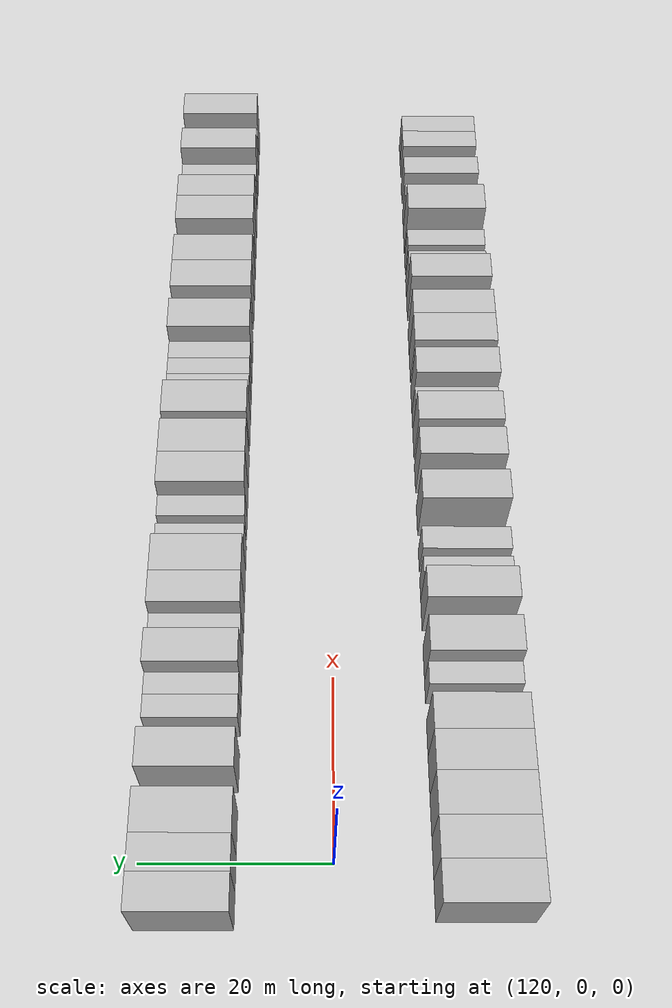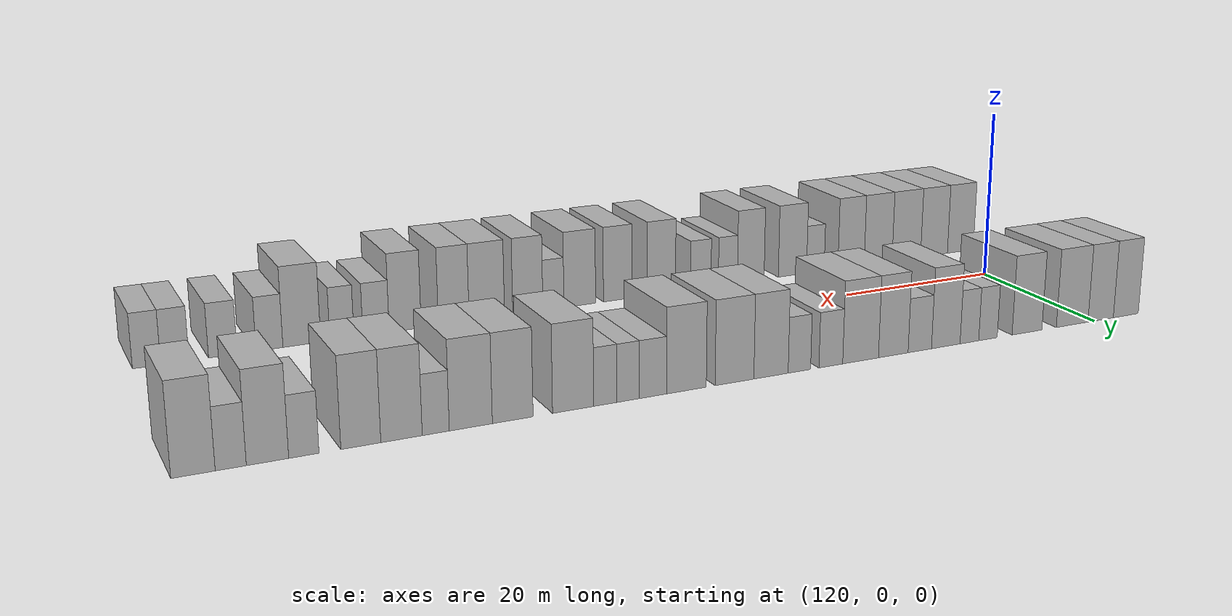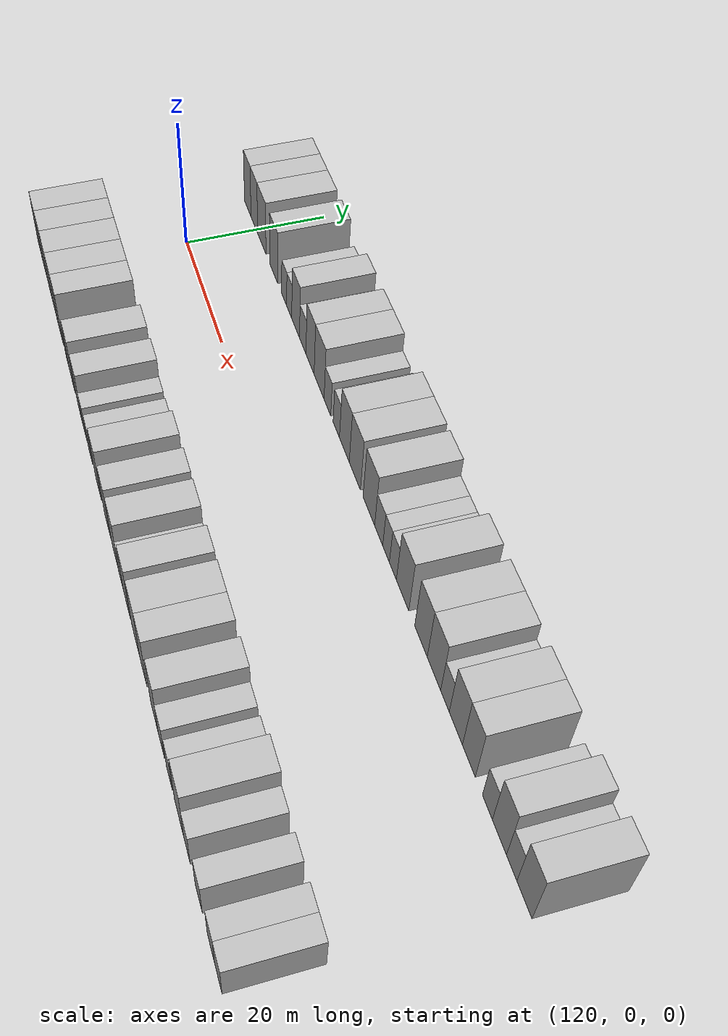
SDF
<sdf version="1.6">
 <world name="default">
  <model name="building_27">
   <static>1</static>
   <pose>115.3962 15.0000 0 0.000000 0.000000 1.570796</pose>
   <link name="link">
    <pose>0 0 4.50 0 0 0</pose>
    <collision name="collision"><geometry><box><size>10.0000 3.6218 9.0000</size></box></geometry></collision>
    <visual name="visual">
     <cast_shadows>0</cast_shadows>
     <geometry><box><size>10.0000 3.6218 9.0000</size></box></geometry>
     <material>
      <script>
       <uri>model://HANNAS_wall/materials/scripts</uri>
       <uri>model://HANNAS_wall/materials/textures</uri>
       <name>vrc/HANNAS_wall</name>
      </script>
     </material>
    </visual>
   </link>
  </model>
  <model name="building_28">
   <static>1</static>
   <pose>119.0243 15.0000 0 0.000000 0.000000 1.570796</pose>
   <link name="link">
    <pose>0 0 4.50 0 0 0</pose>
    <collision name="collision"><geometry><box><size>10.0000 3.6346 9.0000</size></box></geometry></collision>
    <visual name="visual">
     <cast_shadows>0</cast_shadows>
     <geometry><box><size>10.0000 3.6346 9.0000</size></box></geometry>
     <material>
      <script>
       <uri>model://HANNAS_wall/materials/scripts</uri>
       <uri>model://HANNAS_wall/materials/textures</uri>
       <name>vrc/HANNAS_wall</name>
      </script>
     </material>
    </visual>
   </link>
  </model>
  <model name="building_29">
   <static>1</static>
   <pose>123.0679 15.0000 0 0.000000 0.000000 1.570796</pose>
   <link name="link">
    <pose>0 0 4.50 0 0 0</pose>
    <collision name="collision"><geometry><box><size>10.0000 4.4526 9.0000</size></box></geometry></collision>
    <visual name="visual">
     <cast_shadows>0</cast_shadows>
     <geometry><box><size>10.0000 4.4526 9.0000</size></box></geometry>
     <material>
      <script>
       <uri>model://HANNAS_wall/materials/scripts</uri>
       <uri>model://HANNAS_wall/materials/textures</uri>
       <name>vrc/HANNAS_wall</name>
      </script>
     </material>
    </visual>
   </link>
  </model>
  <model name="building_30">
   <static>1</static>
   <pose>129.3301 15.0000 0 0.000000 0.000000 1.570796</pose>
   <link name="link">
    <pose>0 0 4.50 0 0 0</pose>
    <collision name="collision"><geometry><box><size>10.0000 4.0718 9.0000</size></box></geometry></collision>
    <visual name="visual">
     <cast_shadows>0</cast_shadows>
     <geometry><box><size>10.0000 4.0718 9.0000</size></box></geometry>
     <material>
      <script>
       <uri>model://HANNAS_wall/materials/scripts</uri>
       <uri>model://HANNAS_wall/materials/textures</uri>
       <name>vrc/HANNAS_wall</name>
      </script>
     </material>
    </visual>
   </link>
  </model>
  <model name="building_31">
   <static>1</static>
   <pose>134.6011 15.0000 0 0.000000 0.000000 1.570796</pose>
   <link name="link">
    <pose>0 0 3.00 0 0 0</pose>
    <collision name="collision"><geometry><box><size>10.0000 2.4702 6.0000</size></box></geometry></collision>
    <visual name="visual">
     <cast_shadows>0</cast_shadows>
     <geometry><box><size>10.0000 2.4702 6.0000</size></box></geometry>
     <material>
      <script>
       <uri>model://HANNAS_wall/materials/scripts</uri>
       <uri>model://HANNAS_wall/materials/textures</uri>
       <name>vrc/HANNAS_wall</name>
      </script>
     </material>
    </visual>
   </link>
  </model>
  <model name="building_32">
   <static>1</static>
   <pose>137.0660 15.0000 0 0.000000 0.000000 1.570796</pose>
   <link name="link">
    <pose>0 0 3.00 0 0 0</pose>
    <collision name="collision"><geometry><box><size>10.0000 2.4595 6.0000</size></box></geometry></collision>
    <visual name="visual">
     <cast_shadows>0</cast_shadows>
     <geometry><box><size>10.0000 2.4595 6.0000</size></box></geometry>
     <material>
      <script>
       <uri>model://HANNAS_wall/materials/scripts</uri>
       <uri>model://HANNAS_wall/materials/textures</uri>
       <name>vrc/HANNAS_wall</name>
      </script>
     </material>
    </visual>
   </link>
  </model>
  <model name="building_33">
   <static>1</static>
   <pose>140.1525 15.0000 0 0.000000 0.000000 1.570796</pose>
   <link name="link">
    <pose>0 0 4.50 0 0 0</pose>
    <collision name="collision"><geometry><box><size>10.0000 3.7135 9.0000</size></box></geometry></collision>
    <visual name="visual">
     <cast_shadows>0</cast_shadows>
     <geometry><box><size>10.0000 3.7135 9.0000</size></box></geometry>
     <material>
      <script>
       <uri>model://HANNAS_wall/materials/scripts</uri>
       <uri>model://HANNAS_wall/materials/textures</uri>
       <name>vrc/HANNAS_wall</name>
      </script>
     </material>
    </visual>
   </link>
  </model>
  <model name="building_34">
   <static>1</static>
   <pose>143.5038 15.0000 0 0.000000 0.000000 1.570796</pose>
   <link name="link">
    <pose>0 0 3.00 0 0 0</pose>
    <collision name="collision"><geometry><box><size>10.0000 2.9892 6.0000</size></box></geometry></collision>
    <visual name="visual">
     <cast_shadows>0</cast_shadows>
     <geometry><box><size>10.0000 2.9892 6.0000</size></box></geometry>
     <material>
      <script>
       <uri>model://HANNAS_wall/materials/scripts</uri>
       <uri>model://HANNAS_wall/materials/textures</uri>
       <name>vrc/HANNAS_wall</name>
      </script>
     </material>
    </visual>
   </link>
  </model>
  <model name="building_35">
   <static>1</static>
   <pose>146.8624 15.0000 0 0.000000 0.000000 1.570796</pose>
   <link name="link">
    <pose>0 0 4.50 0 0 0</pose>
    <collision name="collision"><geometry><box><size>10.0000 3.7280 9.0000</size></box></geometry></collision>
    <visual name="visual">
     <cast_shadows>0</cast_shadows>
     <geometry><box><size>10.0000 3.7280 9.0000</size></box></geometry>
     <material>
      <script>
       <uri>model://HANNAS_wall/materials/scripts</uri>
       <uri>model://HANNAS_wall/materials/textures</uri>
       <name>vrc/HANNAS_wall</name>
      </script>
     </material>
    </visual>
   </link>
  </model>
  <model name="building_36">
   <static>1</static>
   <pose>150.9326 15.0000 0 0.000000 0.000000 1.570796</pose>
   <link name="link">
    <pose>0 0 4.50 0 0 0</pose>
    <collision name="collision"><geometry><box><size>10.0000 4.4124 9.0000</size></box></geometry></collision>
    <visual name="visual">
     <cast_shadows>0</cast_shadows>
     <geometry><box><size>10.0000 4.4124 9.0000</size></box></geometry>
     <material>
      <script>
       <uri>model://HANNAS_wall/materials/scripts</uri>
       <uri>model://HANNAS_wall/materials/textures</uri>
       <name>vrc/HANNAS_wall</name>
      </script>
     </material>
    </visual>
   </link>
  </model>
  <model name="building_37">
   <static>1</static>
   <pose>154.5775 15.0000 0 0.000000 0.000000 1.570796</pose>
   <link name="link">
    <pose>0 0 3.00 0 0 0</pose>
    <collision name="collision"><geometry><box><size>10.0000 2.8774 6.0000</size></box></geometry></collision>
    <visual name="visual">
     <cast_shadows>0</cast_shadows>
     <geometry><box><size>10.0000 2.8774 6.0000</size></box></geometry>
     <material>
      <script>
       <uri>model://HANNAS_wall/materials/scripts</uri>
       <uri>model://HANNAS_wall/materials/textures</uri>
       <name>vrc/HANNAS_wall</name>
      </script>
     </material>
    </visual>
   </link>
  </model>
  <model name="building_38">
   <static>1</static>
   <pose>158.3508 15.0000 0 0.000000 0.000000 1.570796</pose>
   <link name="link">
    <pose>0 0 3.00 0 0 0</pose>
    <collision name="collision"><geometry><box><size>10.0000 2.6693 6.0000</size></box></geometry></collision>
    <visual name="visual">
     <cast_shadows>0</cast_shadows>
     <geometry><box><size>10.0000 2.6693 6.0000</size></box></geometry>
     <material>
      <script>
       <uri>model://HANNAS_wall/materials/scripts</uri>
       <uri>model://HANNAS_wall/materials/textures</uri>
       <name>vrc/HANNAS_wall</name>
      </script>
     </material>
    </visual>
   </link>
  </model>
  <model name="building_39">
   <static>1</static>
   <pose>161.6901 15.0000 0 0.000000 0.000000 1.570796</pose>
   <link name="link">
    <pose>0 0 4.50 0 0 0</pose>
    <collision name="collision"><geometry><box><size>10.0000 4.0091 9.0000</size></box></geometry></collision>
    <visual name="visual">
     <cast_shadows>0</cast_shadows>
     <geometry><box><size>10.0000 4.0091 9.0000</size></box></geometry>
     <material>
      <script>
       <uri>model://HANNAS_wall/materials/scripts</uri>
       <uri>model://HANNAS_wall/materials/textures</uri>
       <name>vrc/HANNAS_wall</name>
      </script>
     </material>
    </visual>
   </link>
  </model>
  <model name="building_40">
   <static>1</static>
   <pose>165.9120 15.0000 0 0.000000 0.000000 1.570796</pose>
   <link name="link">
    <pose>0 0 4.50 0 0 0</pose>
    <collision name="collision"><geometry><box><size>10.0000 4.4346 9.0000</size></box></geometry></collision>
    <visual name="visual">
     <cast_shadows>0</cast_shadows>
     <geometry><box><size>10.0000 4.4346 9.0000</size></box></geometry>
     <material>
      <script>
       <uri>model://HANNAS_wall/materials/scripts</uri>
       <uri>model://HANNAS_wall/materials/textures</uri>
       <name>vrc/HANNAS_wall</name>
      </script>
     </material>
    </visual>
   </link>
  </model>
  <model name="building_41">
   <static>1</static>
   <pose>171.3381 15.0000 0 0.000000 0.000000 1.570796</pose>
   <link name="link">
    <pose>0 0 4.50 0 0 0</pose>
    <collision name="collision"><geometry><box><size>10.0000 4.4177 9.0000</size></box></geometry></collision>
    <visual name="visual">
     <cast_shadows>0</cast_shadows>
     <geometry><box><size>10.0000 4.4177 9.0000</size></box></geometry>
     <material>
      <script>
       <uri>model://HANNAS_wall/materials/scripts</uri>
       <uri>model://HANNAS_wall/materials/textures</uri>
       <name>vrc/HANNAS_wall</name>
      </script>
     </material>
    </visual>
   </link>
  </model>
  <model name="building_42">
   <static>1</static>
   <pose>175.0387 15.0000 0 0.000000 0.000000 1.570796</pose>
   <link name="link">
    <pose>0 0 3.00 0 0 0</pose>
    <collision name="collision"><geometry><box><size>10.0000 2.9836 6.0000</size></box></geometry></collision>
    <visual name="visual">
     <cast_shadows>0</cast_shadows>
     <geometry><box><size>10.0000 2.9836 6.0000</size></box></geometry>
     <material>
      <script>
       <uri>model://HANNAS_wall/materials/scripts</uri>
       <uri>model://HANNAS_wall/materials/textures</uri>
       <name>vrc/HANNAS_wall</name>
      </script>
     </material>
    </visual>
   </link>
  </model>
  <model name="building_43">
   <static>1</static>
   <pose>177.7306 15.0000 0 0.000000 0.000000 1.570796</pose>
   <link name="link">
    <pose>0 0 3.00 0 0 0</pose>
    <collision name="collision"><geometry><box><size>10.0000 2.4003 6.0000</size></box></geometry></collision>
    <visual name="visual">
     <cast_shadows>0</cast_shadows>
     <geometry><box><size>10.0000 2.4003 6.0000</size></box></geometry>
     <material>
      <script>
       <uri>model://HANNAS_wall/materials/scripts</uri>
       <uri>model://HANNAS_wall/materials/textures</uri>
       <name>vrc/HANNAS_wall</name>
      </script>
     </material>
    </visual>
   </link>
  </model>
  <model name="building_44">
   <static>1</static>
   <pose>180.1744 15.0000 0 0.000000 0.000000 1.570796</pose>
   <link name="link">
    <pose>0 0 3.00 0 0 0</pose>
    <collision name="collision"><geometry><box><size>10.0000 2.4873 6.0000</size></box></geometry></collision>
    <visual name="visual">
     <cast_shadows>0</cast_shadows>
     <geometry><box><size>10.0000 2.4873 6.0000</size></box></geometry>
     <material>
      <script>
       <uri>model://HANNAS_wall/materials/scripts</uri>
       <uri>model://HANNAS_wall/materials/textures</uri>
       <name>vrc/HANNAS_wall</name>
      </script>
     </material>
    </visual>
   </link>
  </model>
  <model name="building_45">
   <static>1</static>
   <pose>183.5654 15.0000 0 0.000000 0.000000 1.570796</pose>
   <link name="link">
    <pose>0 0 4.50 0 0 0</pose>
    <collision name="collision"><geometry><box><size>10.0000 4.2947 9.0000</size></box></geometry></collision>
    <visual name="visual">
     <cast_shadows>0</cast_shadows>
     <geometry><box><size>10.0000 4.2947 9.0000</size></box></geometry>
     <material>
      <script>
       <uri>model://HANNAS_wall/materials/scripts</uri>
       <uri>model://HANNAS_wall/materials/textures</uri>
       <name>vrc/HANNAS_wall</name>
      </script>
     </material>
    </visual>
   </link>
  </model>
  <model name="building_46">
   <static>1</static>
   <pose>189.7695 15.0000 0 0.000000 0.000000 1.570796</pose>
   <link name="link">
    <pose>0 0 4.50 0 0 0</pose>
    <collision name="collision"><geometry><box><size>10.0000 4.1134 9.0000</size></box></geometry></collision>
    <visual name="visual">
     <cast_shadows>0</cast_shadows>
     <geometry><box><size>10.0000 4.1134 9.0000</size></box></geometry>
     <material>
      <script>
       <uri>model://HANNAS_wall/materials/scripts</uri>
       <uri>model://HANNAS_wall/materials/textures</uri>
       <name>vrc/HANNAS_wall</name>
      </script>
     </material>
    </visual>
   </link>
  </model>
  <model name="building_47">
   <static>1</static>
   <pose>193.9532 15.0000 0 0.000000 0.000000 1.570796</pose>
   <link name="link">
    <pose>0 0 4.50 0 0 0</pose>
    <collision name="collision"><geometry><box><size>10.0000 4.2541 9.0000</size></box></geometry></collision>
    <visual name="visual">
     <cast_shadows>0</cast_shadows>
     <geometry><box><size>10.0000 4.2541 9.0000</size></box></geometry>
     <material>
      <script>
       <uri>model://HANNAS_wall/materials/scripts</uri>
       <uri>model://HANNAS_wall/materials/textures</uri>
       <name>vrc/HANNAS_wall</name>
      </script>
     </material>
    </visual>
   </link>
  </model>
  <model name="building_48">
   <static>1</static>
   <pose>197.3949 15.0000 0 0.000000 0.000000 1.570796</pose>
   <link name="link">
    <pose>0 0 3.00 0 0 0</pose>
    <collision name="collision"><geometry><box><size>10.0000 2.6293 6.0000</size></box></geometry></collision>
    <visual name="visual">
     <cast_shadows>0</cast_shadows>
     <geometry><box><size>10.0000 2.6293 6.0000</size></box></geometry>
     <material>
      <script>
       <uri>model://HANNAS_wall/materials/scripts</uri>
       <uri>model://HANNAS_wall/materials/textures</uri>
       <name>vrc/HANNAS_wall</name>
      </script>
     </material>
    </visual>
   </link>
  </model>
  <model name="building_49">
   <static>1</static>
   <pose>200.6823 15.0000 0 0.000000 0.000000 1.570796</pose>
   <link name="link">
    <pose>0 0 4.50 0 0 0</pose>
    <collision name="collision"><geometry><box><size>10.0000 3.9455 9.0000</size></box></geometry></collision>
    <visual name="visual">
     <cast_shadows>0</cast_shadows>
     <geometry><box><size>10.0000 3.9455 9.0000</size></box></geometry>
     <material>
      <script>
       <uri>model://HANNAS_wall/materials/scripts</uri>
       <uri>model://HANNAS_wall/materials/textures</uri>
       <name>vrc/HANNAS_wall</name>
      </script>
     </material>
    </visual>
   </link>
  </model>
  <model name="building_50">
   <static>1</static>
   <pose>204.5185 15.0000 0 0.000000 0.000000 1.570796</pose>
   <link name="link">
    <pose>0 0 4.50 0 0 0</pose>
    <collision name="collision"><geometry><box><size>10.0000 3.7268 9.0000</size></box></geometry></collision>
    <visual name="visual">
     <cast_shadows>0</cast_shadows>
     <geometry><box><size>10.0000 3.7268 9.0000</size></box></geometry>
     <material>
      <script>
       <uri>model://HANNAS_wall/materials/scripts</uri>
       <uri>model://HANNAS_wall/materials/textures</uri>
       <name>vrc/HANNAS_wall</name>
      </script>
     </material>
    </visual>
   </link>
  </model>
  <model name="building_51">
   <static>1</static>
   <pose>209.7540 15.0000 0 0.000000 0.000000 1.570796</pose>
   <link name="link">
    <pose>0 0 3.00 0 0 0</pose>
    <collision name="collision"><geometry><box><size>10.0000 2.7442 6.0000</size></box></geometry></collision>
    <visual name="visual">
     <cast_shadows>0</cast_shadows>
     <geometry><box><size>10.0000 2.7442 6.0000</size></box></geometry>
     <material>
      <script>
       <uri>model://HANNAS_wall/materials/scripts</uri>
       <uri>model://HANNAS_wall/materials/textures</uri>
       <name>vrc/HANNAS_wall</name>
      </script>
     </material>
    </visual>
   </link>
  </model>
  <model name="building_52">
   <static>1</static>
   <pose>213.0092 15.0000 0 0.000000 0.000000 1.570796</pose>
   <link name="link">
    <pose>0 0 4.50 0 0 0</pose>
    <collision name="collision"><geometry><box><size>10.0000 3.7662 9.0000</size></box></geometry></collision>
    <visual name="visual">
     <cast_shadows>0</cast_shadows>
     <geometry><box><size>10.0000 3.7662 9.0000</size></box></geometry>
     <material>
      <script>
       <uri>model://HANNAS_wall/materials/scripts</uri>
       <uri>model://HANNAS_wall/materials/textures</uri>
       <name>vrc/HANNAS_wall</name>
      </script>
     </material>
    </visual>
   </link>
  </model>
  <model name="building_53">
   <static>1</static>
   <pose>216.2493 15.0000 0 0.000000 0.000000 1.570796</pose>
   <link name="link">
    <pose>0 0 3.00 0 0 0</pose>
    <collision name="collision"><geometry><box><size>10.0000 2.7140 6.0000</size></box></geometry></collision>
    <visual name="visual">
     <cast_shadows>0</cast_shadows>
     <geometry><box><size>10.0000 2.7140 6.0000</size></box></geometry>
     <material>
      <script>
       <uri>model://HANNAS_wall/materials/scripts</uri>
       <uri>model://HANNAS_wall/materials/textures</uri>
       <name>vrc/HANNAS_wall</name>
      </script>
     </material>
    </visual>
   </link>
  </model>
  <model name="building_54">
   <static>1</static>
   <pose>219.5103 15.0000 0 0.000000 0.000000 1.570796</pose>
   <link name="link">
    <pose>0 0 4.50 0 0 0</pose>
    <collision name="collision"><geometry><box><size>10.0000 3.8079 9.0000</size></box></geometry></collision>
    <visual name="visual">
     <cast_shadows>0</cast_shadows>
     <geometry><box><size>10.0000 3.8079 9.0000</size></box></geometry>
     <material>
      <script>
       <uri>model://HANNAS_wall/materials/scripts</uri>
       <uri>model://HANNAS_wall/materials/textures</uri>
       <name>vrc/HANNAS_wall</name>
      </script>
     </material>
    </visual>
   </link>
  </model>
  <model name="building_81">
   <static>1</static>
   <pose>116.4200 -15.0000 0 0.000000 0.000000 1.570796</pose>
   <link name="link">
    <pose>0 0 4.50 0 0 0</pose>
    <collision name="collision"><geometry><box><size>10.0000 4.0699 9.0000</size></box></geometry></collision>
    <visual name="visual">
     <cast_shadows>0</cast_shadows>
     <geometry><box><size>10.0000 4.0699 9.0000</size></box></geometry>
     <material>
      <script>
       <uri>model://HANNAS_wall/materials/scripts</uri>
       <uri>model://HANNAS_wall/materials/textures</uri>
       <name>vrc/HANNAS_wall</name>
      </script>
     </material>
    </visual>
   </link>
  </model>
  <model name="building_82">
   <static>1</static>
   <pose>120.5341 -15.0000 0 0.000000 0.000000 1.570796</pose>
   <link name="link">
    <pose>0 0 4.50 0 0 0</pose>
    <collision name="collision"><geometry><box><size>10.0000 4.1584 9.0000</size></box></geometry></collision>
    <visual name="visual">
     <cast_shadows>0</cast_shadows>
     <geometry><box><size>10.0000 4.1584 9.0000</size></box></geometry>
     <material>
      <script>
       <uri>model://HANNAS_wall/materials/scripts</uri>
       <uri>model://HANNAS_wall/materials/textures</uri>
       <name>vrc/HANNAS_wall</name>
      </script>
     </material>
    </visual>
   </link>
  </model>
  <model name="building_83">
   <static>1</static>
   <pose>124.7857 -15.0000 0 0.000000 0.000000 1.570796</pose>
   <link name="link">
    <pose>0 0 4.50 0 0 0</pose>
    <collision name="collision"><geometry><box><size>10.0000 4.3448 9.0000</size></box></geometry></collision>
    <visual name="visual">
     <cast_shadows>0</cast_shadows>
     <geometry><box><size>10.0000 4.3448 9.0000</size></box></geometry>
     <material>
      <script>
       <uri>model://HANNAS_wall/materials/scripts</uri>
       <uri>model://HANNAS_wall/materials/textures</uri>
       <name>vrc/HANNAS_wall</name>
      </script>
     </material>
    </visual>
   </link>
  </model>
  <model name="building_84">
   <static>1</static>
   <pose>129.0529 -15.0000 0 0.000000 0.000000 1.570796</pose>
   <link name="link">
    <pose>0 0 4.50 0 0 0</pose>
    <collision name="collision"><geometry><box><size>10.0000 4.1896 9.0000</size></box></geometry></collision>
    <visual name="visual">
     <cast_shadows>0</cast_shadows>
     <geometry><box><size>10.0000 4.1896 9.0000</size></box></geometry>
     <material>
      <script>
       <uri>model://HANNAS_wall/materials/scripts</uri>
       <uri>model://HANNAS_wall/materials/textures</uri>
       <name>vrc/HANNAS_wall</name>
      </script>
     </material>
    </visual>
   </link>
  </model>
  <model name="building_85">
   <static>1</static>
   <pose>133.0832 -15.0000 0 0.000000 0.000000 1.570796</pose>
   <link name="link">
    <pose>0 0 4.50 0 0 0</pose>
    <collision name="collision"><geometry><box><size>10.0000 3.8710 9.0000</size></box></geometry></collision>
    <visual name="visual">
     <cast_shadows>0</cast_shadows>
     <geometry><box><size>10.0000 3.8710 9.0000</size></box></geometry>
     <material>
      <script>
       <uri>model://HANNAS_wall/materials/scripts</uri>
       <uri>model://HANNAS_wall/materials/textures</uri>
       <name>vrc/HANNAS_wall</name>
      </script>
     </material>
    </visual>
   </link>
  </model>
  <model name="building_86">
   <static>1</static>
   <pose>138.2881 -15.0000 0 0.000000 0.000000 1.570796</pose>
   <link name="link">
    <pose>0 0 3.00 0 0 0</pose>
    <collision name="collision"><geometry><box><size>10.0000 2.5389 6.0000</size></box></geometry></collision>
    <visual name="visual">
     <cast_shadows>0</cast_shadows>
     <geometry><box><size>10.0000 2.5389 6.0000</size></box></geometry>
     <material>
      <script>
       <uri>model://HANNAS_wall/materials/scripts</uri>
       <uri>model://HANNAS_wall/materials/textures</uri>
       <name>vrc/HANNAS_wall</name>
      </script>
     </material>
    </visual>
   </link>
  </model>
  <model name="building_87">
   <static>1</static>
   <pose>141.5646 -15.0000 0 0.000000 0.000000 1.570796</pose>
   <link name="link">
    <pose>0 0 4.50 0 0 0</pose>
    <collision name="collision"><geometry><box><size>10.0000 4.0140 9.0000</size></box></geometry></collision>
    <visual name="visual">
     <cast_shadows>0</cast_shadows>
     <geometry><box><size>10.0000 4.0140 9.0000</size></box></geometry>
     <material>
      <script>
       <uri>model://HANNAS_wall/materials/scripts</uri>
       <uri>model://HANNAS_wall/materials/textures</uri>
       <name>vrc/HANNAS_wall</name>
      </script>
     </material>
    </visual>
   </link>
  </model>
  <model name="building_88">
   <static>1</static>
   <pose>147.4295 -15.0000 0 0.000000 0.000000 1.570796</pose>
   <link name="link">
    <pose>0 0 4.50 0 0 0</pose>
    <collision name="collision"><geometry><box><size>10.0000 3.7158 9.0000</size></box></geometry></collision>
    <visual name="visual">
     <cast_shadows>0</cast_shadows>
     <geometry><box><size>10.0000 3.7158 9.0000</size></box></geometry>
     <material>
      <script>
       <uri>model://HANNAS_wall/materials/scripts</uri>
       <uri>model://HANNAS_wall/materials/textures</uri>
       <name>vrc/HANNAS_wall</name>
      </script>
     </material>
    </visual>
   </link>
  </model>
  <model name="building_89">
   <static>1</static>
   <pose>150.5881 -15.0000 0 0.000000 0.000000 1.570796</pose>
   <link name="link">
    <pose>0 0 3.00 0 0 0</pose>
    <collision name="collision"><geometry><box><size>10.0000 2.6013 6.0000</size></box></geometry></collision>
    <visual name="visual">
     <cast_shadows>0</cast_shadows>
     <geometry><box><size>10.0000 2.6013 6.0000</size></box></geometry>
     <material>
      <script>
       <uri>model://HANNAS_wall/materials/scripts</uri>
       <uri>model://HANNAS_wall/materials/textures</uri>
       <name>vrc/HANNAS_wall</name>
      </script>
     </material>
    </visual>
   </link>
  </model>
  <model name="building_90">
   <static>1</static>
   <pose>154.2707 -15.0000 0 0.000000 0.000000 1.570796</pose>
   <link name="link">
    <pose>0 0 3.00 0 0 0</pose>
    <collision name="collision"><geometry><box><size>10.0000 2.7640 6.0000</size></box></geometry></collision>
    <visual name="visual">
     <cast_shadows>0</cast_shadows>
     <geometry><box><size>10.0000 2.7640 6.0000</size></box></geometry>
     <material>
      <script>
       <uri>model://HANNAS_wall/materials/scripts</uri>
       <uri>model://HANNAS_wall/materials/textures</uri>
       <name>vrc/HANNAS_wall</name>
      </script>
     </material>
    </visual>
   </link>
  </model>
  <model name="building_91">
   <static>1</static>
   <pose>159.5255 -15.0000 0 0.000000 0.000000 1.570796</pose>
   <link name="link">
    <pose>0 0 4.50 0 0 0</pose>
    <collision name="collision"><geometry><box><size>10.0000 3.7456 9.0000</size></box></geometry></collision>
    <visual name="visual">
     <cast_shadows>0</cast_shadows>
     <geometry><box><size>10.0000 3.7456 9.0000</size></box></geometry>
     <material>
      <script>
       <uri>model://HANNAS_wall/materials/scripts</uri>
       <uri>model://HANNAS_wall/materials/textures</uri>
       <name>vrc/HANNAS_wall</name>
      </script>
     </material>
    </visual>
   </link>
  </model>
  <model name="building_92">
   <static>1</static>
   <pose>165.2270 -15.0000 0 0.000000 0.000000 1.570796</pose>
   <link name="link">
    <pose>0 0 4.50 0 0 0</pose>
    <collision name="collision"><geometry><box><size>10.0000 3.6574 9.0000</size></box></geometry></collision>
    <visual name="visual">
     <cast_shadows>0</cast_shadows>
     <geometry><box><size>10.0000 3.6574 9.0000</size></box></geometry>
     <material>
      <script>
       <uri>model://HANNAS_wall/materials/scripts</uri>
       <uri>model://HANNAS_wall/materials/textures</uri>
       <name>vrc/HANNAS_wall</name>
      </script>
     </material>
    </visual>
   </link>
  </model>
  <model name="building_93">
   <static>1</static>
   <pose>170.0524 -15.0000 0 0.000000 0.000000 1.570796</pose>
   <link name="link">
    <pose>0 0 4.50 0 0 0</pose>
    <collision name="collision"><geometry><box><size>10.0000 3.9933 9.0000</size></box></geometry></collision>
    <visual name="visual">
     <cast_shadows>0</cast_shadows>
     <geometry><box><size>10.0000 3.9933 9.0000</size></box></geometry>
     <material>
      <script>
       <uri>model://HANNAS_wall/materials/scripts</uri>
       <uri>model://HANNAS_wall/materials/textures</uri>
       <name>vrc/HANNAS_wall</name>
      </script>
     </material>
    </visual>
   </link>
  </model>
  <model name="building_94">
   <static>1</static>
   <pose>173.3575 -15.0000 0 0.000000 0.000000 1.570796</pose>
   <link name="link">
    <pose>0 0 3.00 0 0 0</pose>
    <collision name="collision"><geometry><box><size>10.0000 2.6169 6.0000</size></box></geometry></collision>
    <visual name="visual">
     <cast_shadows>0</cast_shadows>
     <geometry><box><size>10.0000 2.6169 6.0000</size></box></geometry>
     <material>
      <script>
       <uri>model://HANNAS_wall/materials/scripts</uri>
       <uri>model://HANNAS_wall/materials/textures</uri>
       <name>vrc/HANNAS_wall</name>
      </script>
     </material>
    </visual>
   </link>
  </model>
  <model name="building_95">
   <static>1</static>
   <pose>176.5053 -15.0000 0 0.000000 0.000000 1.570796</pose>
   <link name="link">
    <pose>0 0 4.50 0 0 0</pose>
    <collision name="collision"><geometry><box><size>10.0000 3.6787 9.0000</size></box></geometry></collision>
    <visual name="visual">
     <cast_shadows>0</cast_shadows>
     <geometry><box><size>10.0000 3.6787 9.0000</size></box></geometry>
     <material>
      <script>
       <uri>model://HANNAS_wall/materials/scripts</uri>
       <uri>model://HANNAS_wall/materials/textures</uri>
       <name>vrc/HANNAS_wall</name>
      </script>
     </material>
    </visual>
   </link>
  </model>
  <model name="building_96">
   <static>1</static>
   <pose>181.4651 -15.0000 0 0.000000 0.000000 1.570796</pose>
   <link name="link">
    <pose>0 0 4.50 0 0 0</pose>
    <collision name="collision"><geometry><box><size>10.0000 4.2410 9.0000</size></box></geometry></collision>
    <visual name="visual">
     <cast_shadows>0</cast_shadows>
     <geometry><box><size>10.0000 4.2410 9.0000</size></box></geometry>
     <material>
      <script>
       <uri>model://HANNAS_wall/materials/scripts</uri>
       <uri>model://HANNAS_wall/materials/textures</uri>
       <name>vrc/HANNAS_wall</name>
      </script>
     </material>
    </visual>
   </link>
  </model>
  <model name="building_97">
   <static>1</static>
   <pose>185.3934 -15.0000 0 0.000000 0.000000 1.570796</pose>
   <link name="link">
    <pose>0 0 4.50 0 0 0</pose>
    <collision name="collision"><geometry><box><size>10.0000 3.6155 9.0000</size></box></geometry></collision>
    <visual name="visual">
     <cast_shadows>0</cast_shadows>
     <geometry><box><size>10.0000 3.6155 9.0000</size></box></geometry>
     <material>
      <script>
       <uri>model://HANNAS_wall/materials/scripts</uri>
       <uri>model://HANNAS_wall/materials/textures</uri>
       <name>vrc/HANNAS_wall</name>
      </script>
     </material>
    </visual>
   </link>
  </model>
  <model name="building_98">
   <static>1</static>
   <pose>191.0337 -15.0000 0 0.000000 0.000000 1.570796</pose>
   <link name="link">
    <pose>0 0 4.50 0 0 0</pose>
    <collision name="collision"><geometry><box><size>10.0000 3.6652 9.0000</size></box></geometry></collision>
    <visual name="visual">
     <cast_shadows>0</cast_shadows>
     <geometry><box><size>10.0000 3.6652 9.0000</size></box></geometry>
     <material>
      <script>
       <uri>model://HANNAS_wall/materials/scripts</uri>
       <uri>model://HANNAS_wall/materials/textures</uri>
       <name>vrc/HANNAS_wall</name>
      </script>
     </material>
    </visual>
   </link>
  </model>
  <model name="building_99">
   <static>1</static>
   <pose>194.3560 -15.0000 0 0.000000 0.000000 1.570796</pose>
   <link name="link">
    <pose>0 0 3.00 0 0 0</pose>
    <collision name="collision"><geometry><box><size>10.0000 2.9795 6.0000</size></box></geometry></collision>
    <visual name="visual">
     <cast_shadows>0</cast_shadows>
     <geometry><box><size>10.0000 2.9795 6.0000</size></box></geometry>
     <material>
      <script>
       <uri>model://HANNAS_wall/materials/scripts</uri>
       <uri>model://HANNAS_wall/materials/textures</uri>
       <name>vrc/HANNAS_wall</name>
      </script>
     </material>
    </visual>
   </link>
  </model>
  <model name="building_100">
   <static>1</static>
   <pose>198.1822 -15.0000 0 0.000000 0.000000 1.570796</pose>
   <link name="link">
    <pose>0 0 3.00 0 0 0</pose>
    <collision name="collision"><geometry><box><size>10.0000 2.6729 6.0000</size></box></geometry></collision>
    <visual name="visual">
     <cast_shadows>0</cast_shadows>
     <geometry><box><size>10.0000 2.6729 6.0000</size></box></geometry>
     <material>
      <script>
       <uri>model://HANNAS_wall/materials/scripts</uri>
       <uri>model://HANNAS_wall/materials/textures</uri>
       <name>vrc/HANNAS_wall</name>
      </script>
     </material>
    </visual>
   </link>
  </model>
  <model name="building_101">
   <static>1</static>
   <pose>202.5755 -15.0000 0 0.000000 0.000000 1.570796</pose>
   <link name="link">
    <pose>0 0 4.50 0 0 0</pose>
    <collision name="collision"><geometry><box><size>10.0000 4.1137 9.0000</size></box></geometry></collision>
    <visual name="visual">
     <cast_shadows>0</cast_shadows>
     <geometry><box><size>10.0000 4.1137 9.0000</size></box></geometry>
     <material>
      <script>
       <uri>model://HANNAS_wall/materials/scripts</uri>
       <uri>model://HANNAS_wall/materials/textures</uri>
       <name>vrc/HANNAS_wall</name>
      </script>
     </material>
    </visual>
   </link>
  </model>
  <model name="building_102">
   <static>1</static>
   <pose>206.0708 -15.0000 0 0.000000 0.000000 1.570796</pose>
   <link name="link">
    <pose>0 0 3.00 0 0 0</pose>
    <collision name="collision"><geometry><box><size>10.0000 2.8769 6.0000</size></box></geometry></collision>
    <visual name="visual">
     <cast_shadows>0</cast_shadows>
     <geometry><box><size>10.0000 2.8769 6.0000</size></box></geometry>
     <material>
      <script>
       <uri>model://HANNAS_wall/materials/scripts</uri>
       <uri>model://HANNAS_wall/materials/textures</uri>
       <name>vrc/HANNAS_wall</name>
      </script>
     </material>
    </visual>
   </link>
  </model>
  <model name="building_103">
   <static>1</static>
   <pose>211.0020 -15.0000 0 0.000000 0.000000 1.570796</pose>
   <link name="link">
    <pose>0 0 3.00 0 0 0</pose>
    <collision name="collision"><geometry><box><size>10.0000 2.9855 6.0000</size></box></geometry></collision>
    <visual name="visual">
     <cast_shadows>0</cast_shadows>
     <geometry><box><size>10.0000 2.9855 6.0000</size></box></geometry>
     <material>
      <script>
       <uri>model://HANNAS_wall/materials/scripts</uri>
       <uri>model://HANNAS_wall/materials/textures</uri>
       <name>vrc/HANNAS_wall</name>
      </script>
     </material>
    </visual>
   </link>
  </model>
  <model name="building_104">
   <static>1</static>
   <pose>215.9409 -15.0000 0 0.000000 0.000000 1.570796</pose>
   <link name="link">
    <pose>0 0 3.00 0 0 0</pose>
    <collision name="collision"><geometry><box><size>10.0000 2.8923 6.0000</size></box></geometry></collision>
    <visual name="visual">
     <cast_shadows>0</cast_shadows>
     <geometry><box><size>10.0000 2.8923 6.0000</size></box></geometry>
     <material>
      <script>
       <uri>model://HANNAS_wall/materials/scripts</uri>
       <uri>model://HANNAS_wall/materials/textures</uri>
       <name>vrc/HANNAS_wall</name>
      </script>
     </material>
    </visual>
   </link>
  </model>
  <model name="building_105">
   <static>1</static>
   <pose>218.8116 -15.0000 0 0.000000 0.000000 1.570796</pose>
   <link name="link">
    <pose>0 0 3.00 0 0 0</pose>
    <collision name="collision"><geometry><box><size>10.0000 2.8491 6.0000</size></box></geometry></collision>
    <visual name="visual">
     <cast_shadows>0</cast_shadows>
     <geometry><box><size>10.0000 2.8491 6.0000</size></box></geometry>
     <material>
      <script>
       <uri>model://HANNAS_wall/materials/scripts</uri>
       <uri>model://HANNAS_wall/materials/textures</uri>
       <name>vrc/HANNAS_wall</name>
      </script>
     </material>
    </visual>
   </link>
  </model>
 </world>
</sdf>
